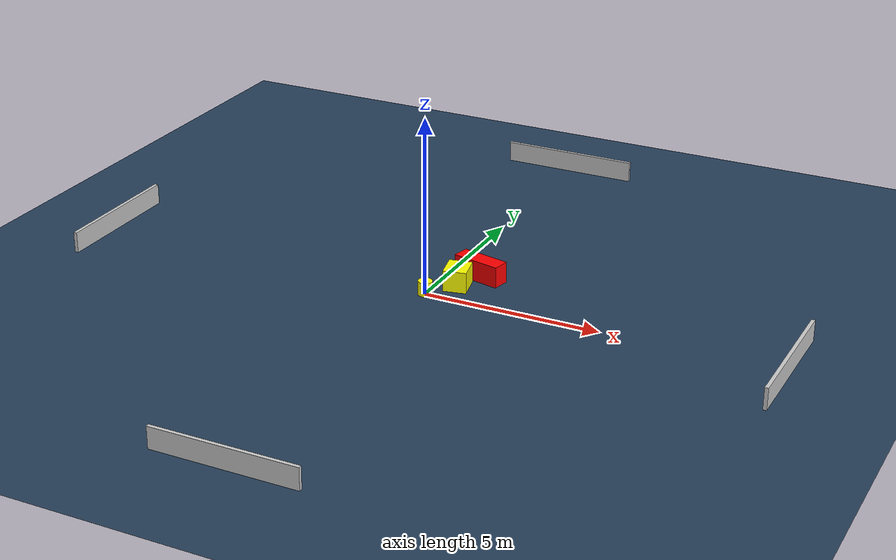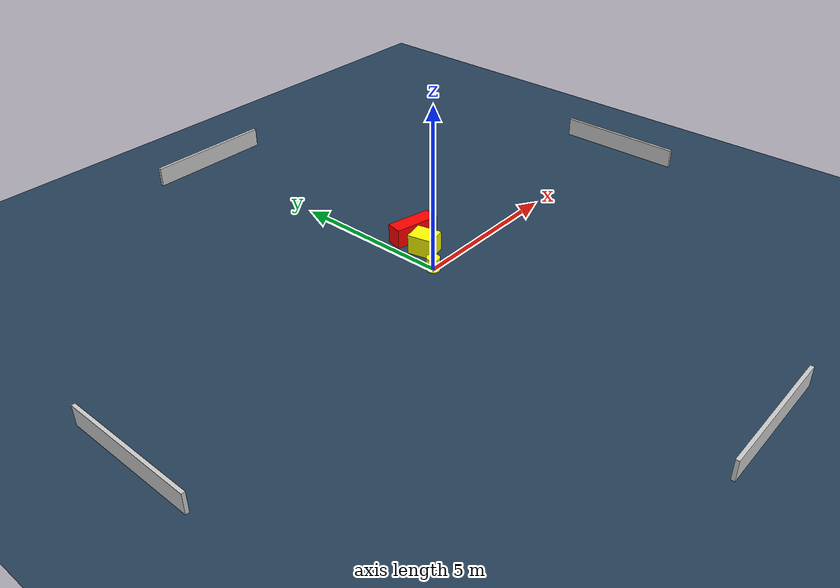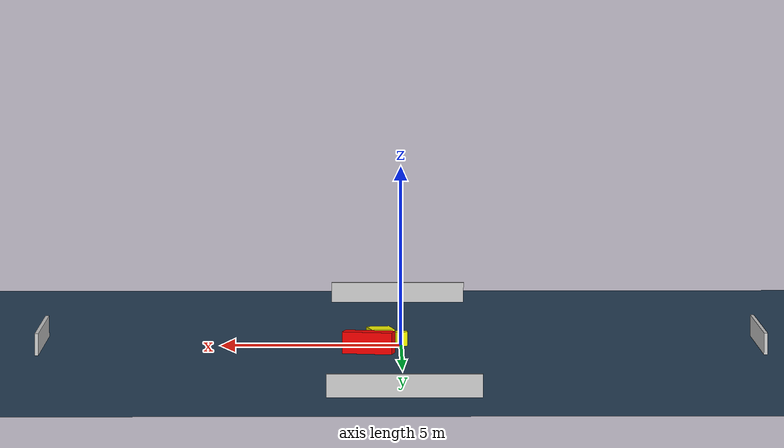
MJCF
<?xml version="1.0" ?>
<mujoco model="generated_environment">
  <option timestep="0.01" integrator="RK4" cone="elliptic"/>
  <default>
    <geom density="1"/>
  </default>
  <asset>
    <texture builtin="gradient" height="3072" name="skybox" rgb1="0.3 0.5 0.7" rgb2="0 0 0" type="skybox" width="512"/>
    <texture builtin="checker" height="300" name="groundplane" rgb1="0.2 0.3 0.4" rgb2="0.1 0.2 0.3" type="2d" width="300"/>
    <material name="groundplane" reflectance="0.2" texrepeat="5 5" texture="groundplane"/>
  </asset>
  <worldbody>
    <light dir="0 0 -1" directional="true" pos="0 0 1.5"/>
    <geom condim="3" friction="0.5 0.005 0.001" material="groundplane" name="floor" pos="0 0 0" size="0 0 0.05" type="plane"/>
    <body name="walls">
      <geom name="wall_1" condim="4" pos="-10.0 0.0 0.3" rgba="0.800000011920929 0.800000011920929 0.800000011920929 1.0" size="0.05 2.0 0.3" type="box"/>
      <geom name="wall_2" condim="4" pos="10.0 0.0 0.3" rgba="0.800000011920929 0.800000011920929 0.800000011920929 1.0" size="0.05 2.0 0.3" type="box"/>
      <geom name="wall_3" condim="4" pos="0.0 -10.0 0.3" rgba="0.800000011920929 0.800000011920929 0.800000011920929 1.0" size="2.0 0.05 0.3" type="box"/>
      <geom name="wall_4" condim="4" pos="0.0 10.0 0.3" rgba="0.800000011920929 0.800000011920929 0.800000011920929 1.0" size="2.0 0.05 0.3" type="box"/>
    </body>
    <body name="robot">
      <joint name="joint_x" type="slide" pos="0 0 0" axis="1 0 0"/>
      <joint name="joint_y" type="slide" pos="0 0 0" axis="0 1 0"/>
      <geom name="robot" type="cylinder" pos="0.0 0.0 0.2" size="0.2 0.2 0.0" mass="5.0" friction="1.0 0.005 0.0001" condim="4" rgba="1.0 1.0 0.0 1.0"/>
    </body>
    <body name="obstacle_1_movable">
      <geom name="obstacle_1_movable" condim="4" pos="0.5688627411905354 0.8154930112098914 0.3" euler="0 0 102.05878421760147" friction="0.0 0.005 0.001" rgba="1.0 1.0 0.0 1.0" size="0.3813259871283978 0.32392639589413436 0.3" type="box" mass="0.1"/>
      <joint type="free"/>
    </body>
    <body name="obstacle_2_static">
      <geom name="obstacle_2_static" condim="4" pos="0.8981998419619377 1.5662991463608693 0.3" euler="0 0 167.77354736972873" friction="0.0 0.005 0.001" rgba="1.0 0.0 0.0 1.0" size="0.6952634803568372 0.24236696969876376 0.3" type="box"/>
    </body>
  </worldbody>
  <actuator>
    <motor name="actuator_x" joint="joint_x" gear="1" ctrlrange="-1 1"/>
    <motor name="actuator_y" joint="joint_y" gear="1" ctrlrange="-1 1"/>
  </actuator>
</mujoco>
